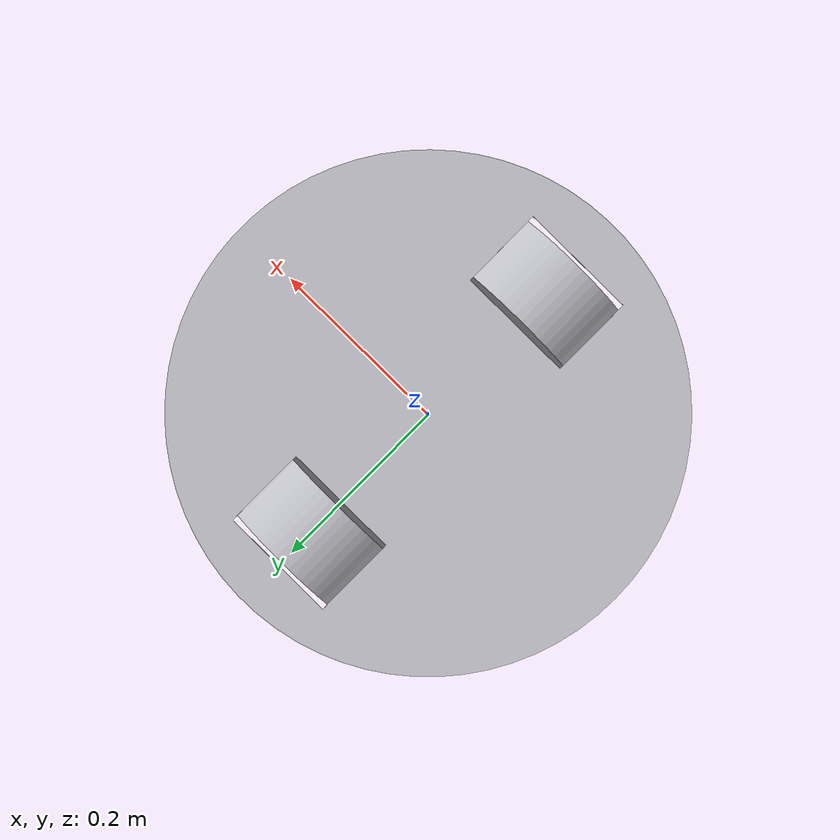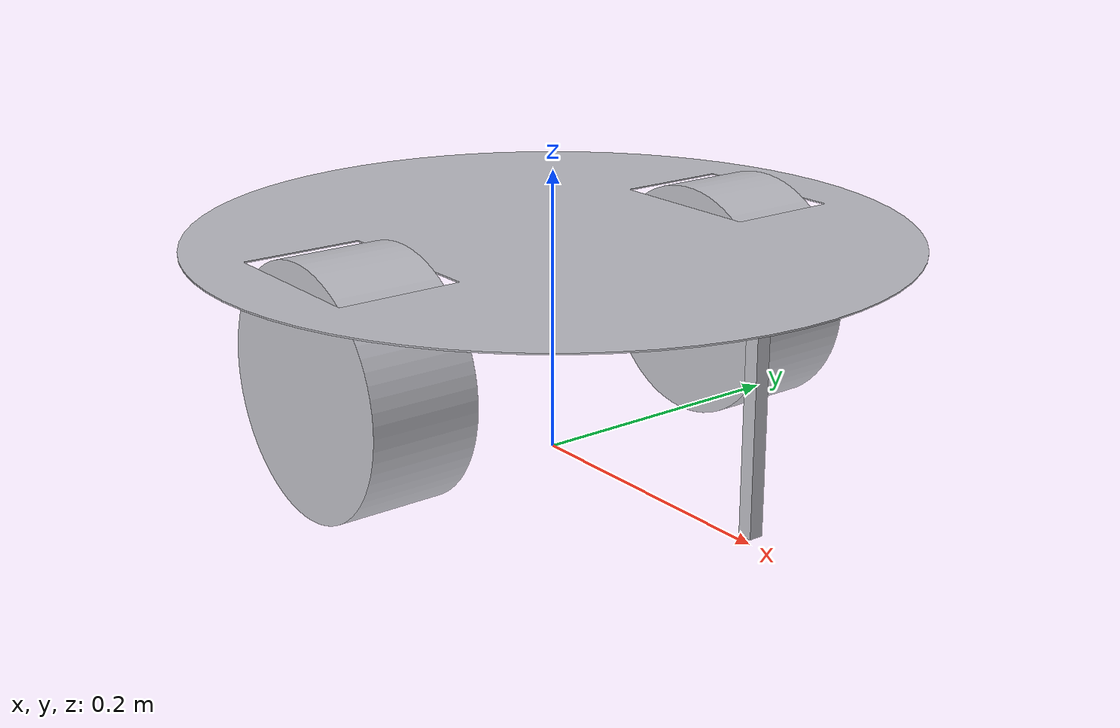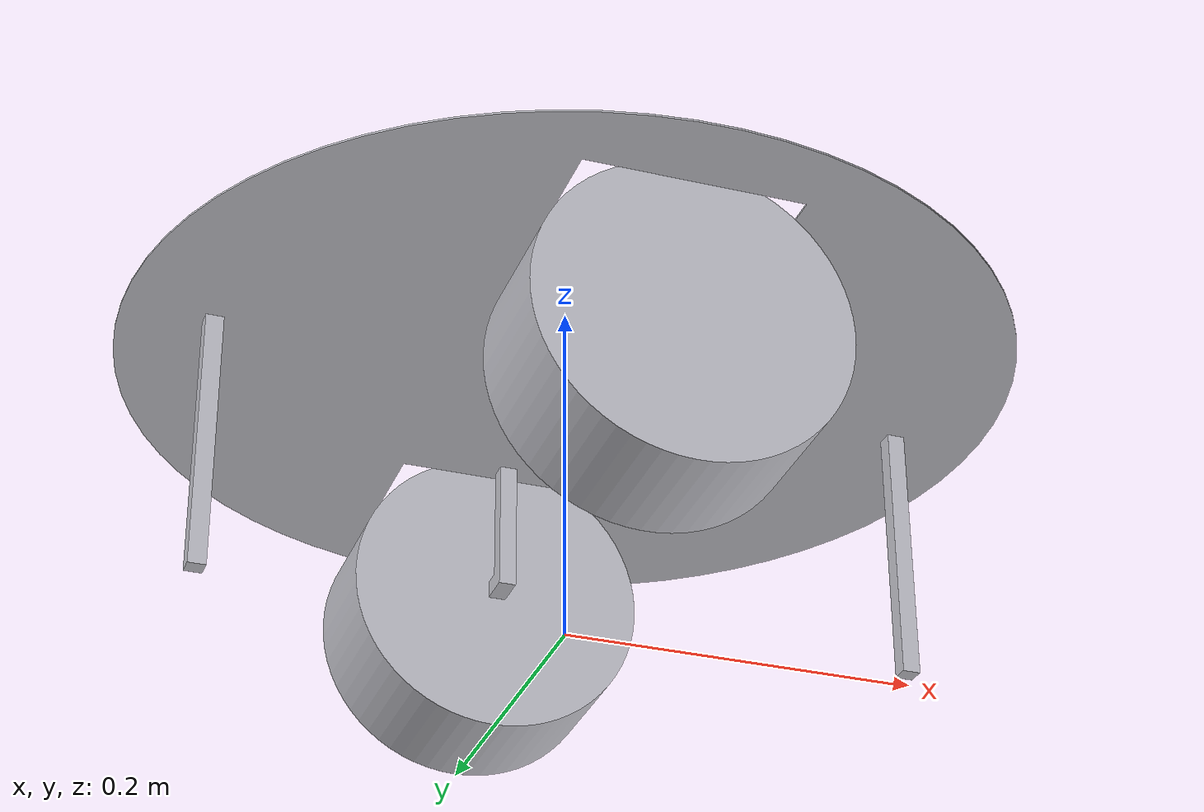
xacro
<?xml version="1.0" ?>
<robot name="haruna" xmlns:xacro="http://www.ros.org/wiki/xacro">

<xacro:include filename="$(find haruna_gazebo)/urdf/haruna.trans" />
<xacro:include filename="$(find haruna_gazebo)/urdf/haruna.gazebo" />
<link name="base_link">
  <visual>
    <origin xyz="0 0 0" rpy="0 0 0"/>
    <geometry>
      <mesh filename="package://haruna_gazebo/meshes/base_link.stl" scale="0.001 0.001 0.001"/>
    </geometry>
  </visual>
  <collision>
    <origin xyz="0 0 0" rpy="0 0 0"/>
    <geometry>
      <mesh filename="package://haruna_gazebo/meshes/base_link.stl" scale="0.001 0.001 0.001"/>
    </geometry>
  </collision>
</link>

<link name="front_leg_link_1">
  <visual>
    <origin xyz="-0.0 -0.0 -0.313" rpy="0 0 0"/>
    <geometry>
      <mesh filename="package://haruna_gazebo/meshes/front_leg_link_1.stl" scale="0.001 0.001 0.001"/>
    </geometry>
  </visual>
  <collision>
    <origin xyz="-0.0 -0.0 -0.313" rpy="0 0 0"/>
    <geometry>
      <mesh filename="package://haruna_gazebo/meshes/front_leg_link_1.stl" scale="0.001 0.001 0.001"/>
    </geometry>
  </collision>
</link>

<link name="back_leg_link_1">
  <visual>
    <origin xyz="-0.0 -0.0 -0.313" rpy="0 0 0"/>
    <geometry>
      <mesh filename="package://haruna_gazebo/meshes/back_leg_link_1.stl" scale="0.001 0.001 0.001"/>
    </geometry>
  </visual>
  <collision>
    <origin xyz="-0.0 -0.0 -0.313" rpy="0 0 0"/>
    <geometry>
      <mesh filename="package://haruna_gazebo/meshes/back_leg_link_1.stl" scale="0.001 0.001 0.001"/>
    </geometry>
  </collision>
</link>

<link name="right_leg_link_1">
  <visual>
    <origin xyz="-0.0 -0.0 -0.313" rpy="0 0 0"/>
    <geometry>
      <mesh filename="package://haruna_gazebo/meshes/right_leg_link_1.stl" scale="0.001 0.001 0.001"/>
    </geometry>
  </visual>
  <collision>
    <origin xyz="-0.0 -0.0 -0.313" rpy="0 0 0"/>
    <geometry>
      <mesh filename="package://haruna_gazebo/meshes/right_leg_link_1.stl" scale="0.001 0.001 0.001"/>
    </geometry>
  </collision>
</link>

<link name="left_leg_link_1">
  <visual>
    <origin xyz="-0.0 -0.0 -0.313" rpy="0 0 0"/>
    <geometry>
      <mesh filename="package://haruna_gazebo/meshes/left_leg_link_1.stl" scale="0.001 0.001 0.001"/>
    </geometry>
  </visual>
  <collision>
    <origin xyz="-0.0 -0.0 -0.313" rpy="0 0 0"/>
    <geometry>
      <mesh filename="package://haruna_gazebo/meshes/left_leg_link_1.stl" scale="0.001 0.001 0.001"/>
    </geometry>
  </collision>
</link>

<link name="left_wheel_link_1">
  <visual>
    <origin xyz="-0.0 -0.1225 -0.085" rpy="0 0 0"/>
    <geometry>
      <mesh filename="package://haruna_gazebo/meshes/left_wheel_link_1.stl" scale="0.001 0.001 0.001"/>
    </geometry>
  </visual>
  <collision>
    <origin xyz="-0.0 -0.1225 -0.085" rpy="0 0 0"/>
    <geometry>
      <mesh filename="package://haruna_gazebo/meshes/left_wheel_link_1.stl" scale="0.001 0.001 0.001"/>
    </geometry>
  </collision>
</link>

<link name="right_wheel_link_1">
  <visual>
    <origin xyz="-0.0 0.1225 -0.085" rpy="0 0 0"/>
    <geometry>
      <mesh filename="package://haruna_gazebo/meshes/right_wheel_link_1.stl" scale="0.001 0.001 0.001"/>
    </geometry>
  </visual>
  <collision>
    <origin xyz="-0.0 0.1225 -0.085" rpy="0 0 0"/>
    <geometry>
      <mesh filename="package://haruna_gazebo/meshes/right_wheel_link_1.stl" scale="0.001 0.001 0.001"/>
    </geometry>
  </collision>
</link>

<joint name="base_to_front_leg_joint" type="fixed">
  <origin xyz="0.0 0.0 0.313" rpy="0 0 0"/>
  <parent link="base_link"/>
  <child link="front_leg_link_1"/>
</joint>

<joint name="base_to_back_leg_joint" type="fixed">
  <origin xyz="0.0 0.0 0.313" rpy="0 0 0"/>
  <parent link="base_link"/>
  <child link="back_leg_link_1"/>
</joint>

<joint name="base_to_right_leg_joint" type="fixed">
  <origin xyz="0.0 0.0 0.313" rpy="0 0 0"/>
  <parent link="base_link"/>
  <child link="right_leg_link_1"/>
</joint>

<joint name="base_to_left_leg_joint" type="fixed">
  <origin xyz="0.0 0.0 0.313" rpy="0 0 0"/>
  <parent link="base_link"/>
  <child link="left_leg_link_1"/>
</joint>

<joint name="left_leg_to_left_wheel_joint" type="continuous">
  <origin xyz="0.0 0.1225 -0.228" rpy="0 0 0"/>
  <parent link="left_leg_link_1"/>
  <child link="left_wheel_link_1"/>
  <axis xyz="0.0 1.0 0.0"/>
</joint>

<joint name="right_leg_to_right_wheel_joint" type="continuous">
  <origin xyz="0.0 -0.1225 -0.228" rpy="0 0 0"/>
  <parent link="right_leg_link_1"/>
  <child link="right_wheel_link_1"/>
  <axis xyz="0.0 -1.0 0.0"/>
</joint>

</robot>

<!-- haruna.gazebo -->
<robot name="haruna" xmlns:xacro="http://www.ros.org/wiki/xacro" >

<xacro:property name="body_color" value="Gazebo/Silver" />

<gazebo>
  <plugin name="control" filename="libgazebo_ros_control.so"/>
</gazebo>
<gazebo reference="base_link">
  <material>${body_color}</material>
  <mu1>0.2</mu1>
  <mu2>0.2</mu2>
  <selfCollide>true</selfCollide>
  <gravity>true</gravity>
</gazebo>

<gazebo reference="front_leg_link_1">
  <material>${body_color}</material>
  <mu1>0.2</mu1>
  <mu2>0.2</mu2>
  <selfCollide>true</selfCollide>
</gazebo>

<gazebo reference="back_leg_link_1">
  <material>${body_color}</material>
  <mu1>0.2</mu1>
  <mu2>0.2</mu2>
  <selfCollide>true</selfCollide>
</gazebo>

<gazebo reference="right_leg_link_1">
  <material>${body_color}</material>
  <mu1>0.2</mu1>
  <mu2>0.2</mu2>
  <selfCollide>true</selfCollide>
</gazebo>

<gazebo reference="left_leg_link_1">
  <material>${body_color}</material>
  <mu1>0.2</mu1>
  <mu2>0.2</mu2>
  <selfCollide>true</selfCollide>
</gazebo>

<gazebo reference="left_wheel_link_1">
  <material>${body_color}</material>
  <mu1>0.2</mu1>
  <mu2>0.2</mu2>
  <selfCollide>true</selfCollide>
</gazebo>

<gazebo reference="right_wheel_link_1">
  <material>${body_color}</material>
  <mu1>0.2</mu1>
  <mu2>0.2</mu2>
  <selfCollide>true</selfCollide>
</gazebo>

</robot>
